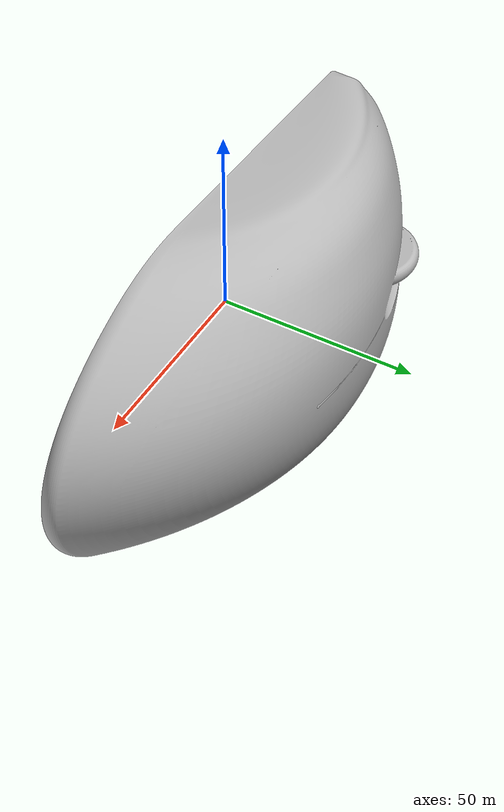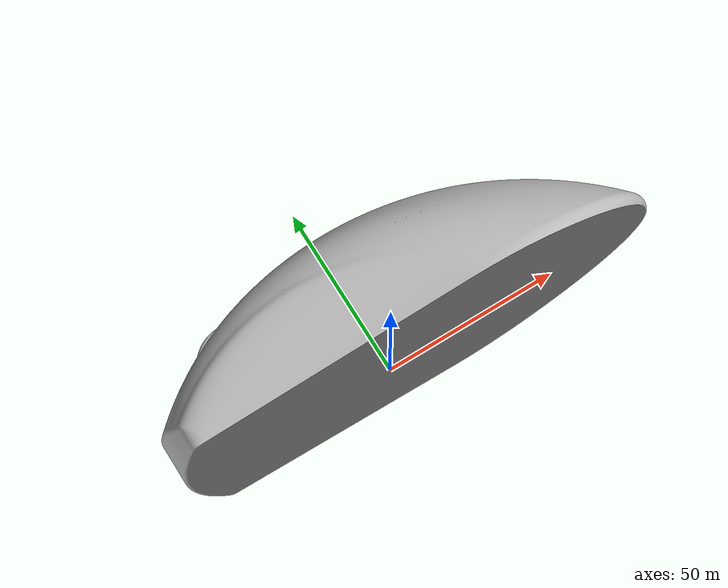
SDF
<?xml version="1.0"?>
<sdf version="1.6">
  <model name="mouse">

    <!-- Dynamic object -->
    <static>false</static>

    <link name="link">

      <gravity>true</gravity>
      <self_collide>false</self_collide>

      <!-- Inertia for small computer mouse -->
      <inertial>
        <mass>0.1</mass>
        <inertia>
          <ixx>0.0001</ixx>
          <iyy>0.0002</iyy>
          <izz>0.00025</izz>
          <ixy>0</ixy>
          <ixz>0</ixz>
          <iyz>0</iyz>
        </inertia>
      </inertial>

      <!-- VISUAL -->
      <visual name="visual">
        <geometry>
          <mesh>
            <uri>model://mouse/meshes/mouse.dae</uri>
            <scale>1 1 1</scale>
          </mesh>
        </geometry>
        <cast_shadows>true</cast_shadows>
      </visual>

      <!-- COLLISION (Using Mesh Instead of Box) -->
      <collision name="collision">
        <geometry>
          <mesh>
            <uri>model://mouse/meshes/mouse.dae</uri>
            <scale>1 1 1</scale>
          </mesh>
        </geometry>

        <surface>
          <contact>
            <ode/>
          </contact>

          <friction>
            <ode>
              <mu>1.2</mu>
              <mu2>1.2</mu2>
            </ode>
          </friction>
        </surface>

      </collision>

    </link>

  </model>
</sdf>
